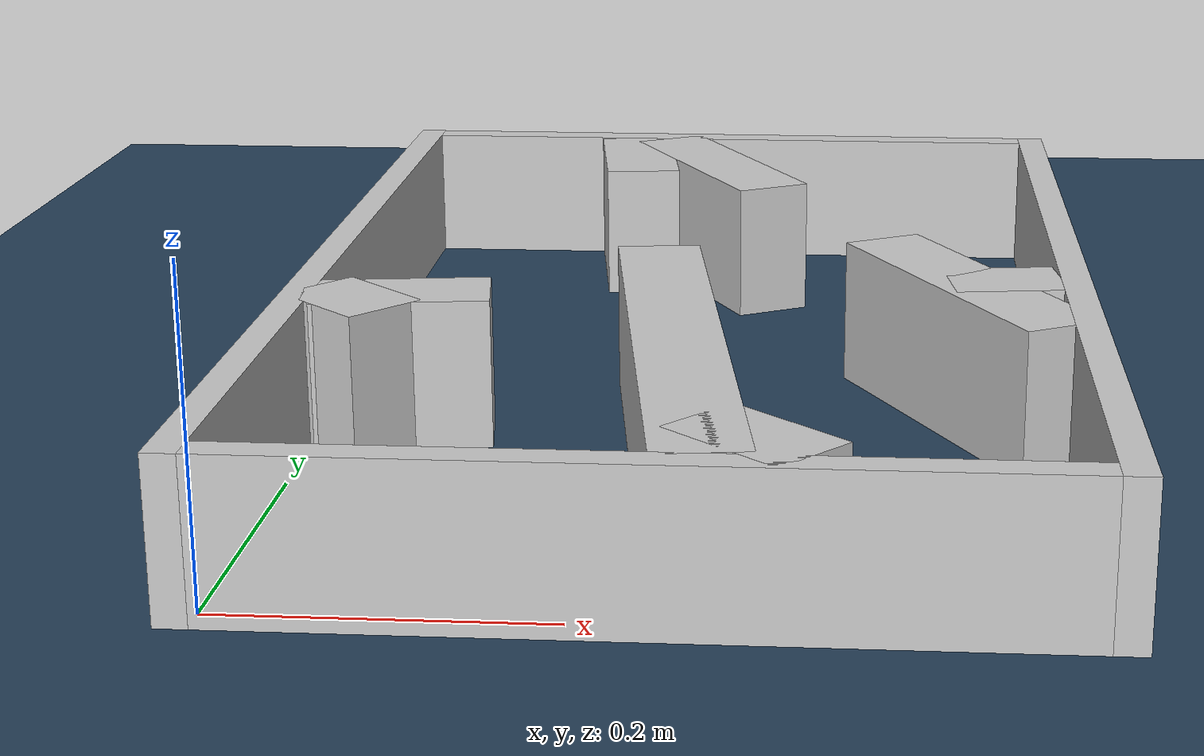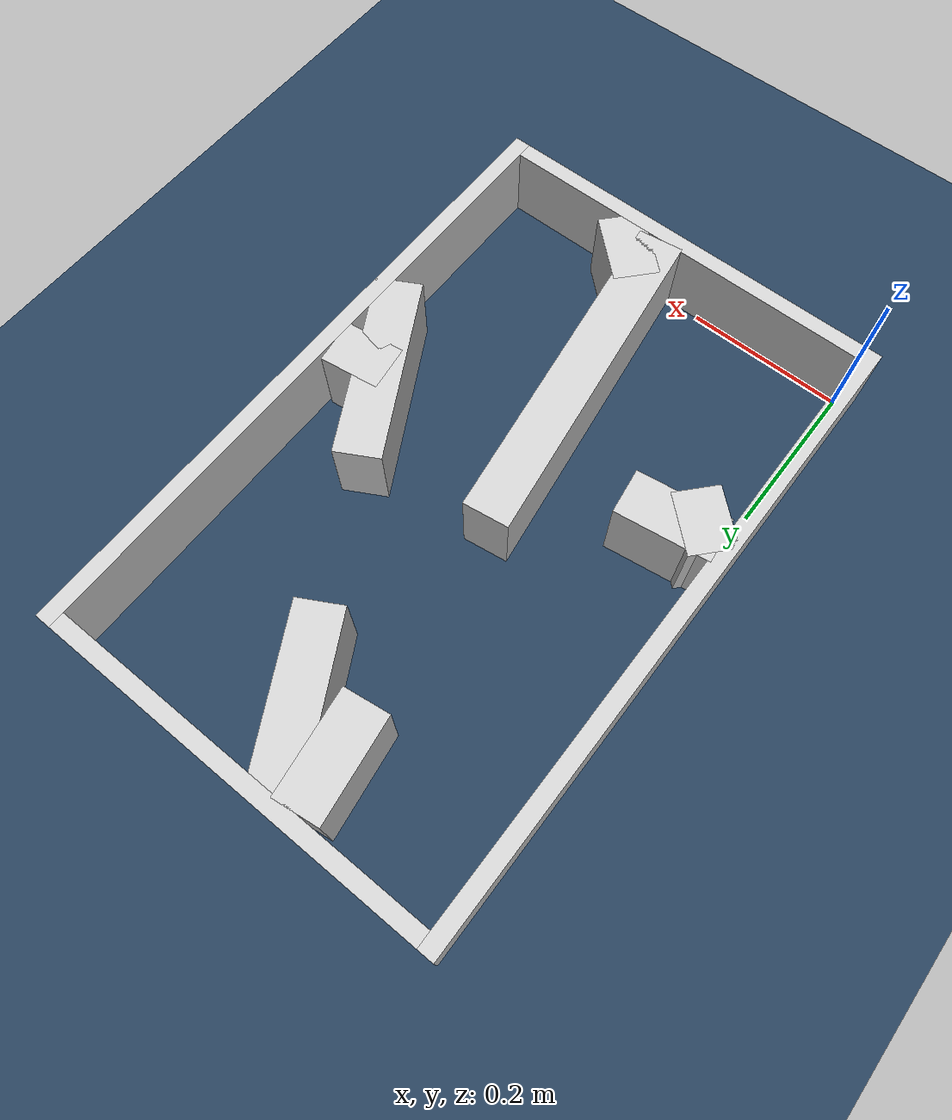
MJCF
<?xml version="1.0" ?>
<mujoco model="generated_real_template">
  <compiler angle="degree"/>
  <option timestep="0.002" integrator="implicitfast" iterations="100" cone="elliptic"/>
  <default>
    <geom density="1"/>
  </default>
  <asset>
    <texture builtin="gradient" height="3072" rgb1="0.3 0.5 0.7" rgb2="0 0 0" type="skybox" width="512"/>
    <texture builtin="checker" height="300" mark="edge" markrgb="0.8 0.8 0.8" name="groundplane" rgb1="0.2 0.3 0.4" rgb2="0.1 0.2 0.3" type="2d" width="300"/>
    <material name="groundplane" reflectance="0.2" texrepeat="5 5" texture="groundplane" texuniform="true"/>
  </asset>
  <worldbody>
    <light dir="0 0 -1" directional="true" pos="0 0 1.5"/>
    <geom name="floor" type="plane" condim="4" friction="0.5 0.005 0.001" material="groundplane" size="0 0 0.05"/>
    <body name="walls">
      <geom name="wall_boundary_left" type="box" condim="4" friction="1.0 0.005 0.0001" rgba="0.8 0.8 0.8 1" pos="-0.010000 0.387500 0.050000" euler="0 0 0.000000" size="0.010000 0.407500 0.050000"/>
      <geom name="wall_boundary_right" type="box" condim="4" friction="1.0 0.005 0.0001" rgba="0.8 0.8 0.8 1" pos="0.500000 0.387500 0.050000" euler="0 0 0.000000" size="0.010000 0.407500 0.050000"/>
      <geom name="wall_boundary_bottom" type="box" condim="4" friction="1.0 0.005 0.0001" rgba="0.8 0.8 0.8 1" pos="0.245000 -0.010000 0.050000" euler="0 0 0.000000" size="0.245000 0.010000 0.050000"/>
      <geom name="wall_boundary_top" type="box" condim="4" friction="1.0 0.005 0.0001" rgba="0.8 0.8 0.8 1" pos="0.245000 0.785000 0.050000" euler="0 0 0.000000" size="0.245000 0.010000 0.050000"/>
      <geom name="wall_inner_1_1" type="box" condim="4" friction="1.0 0.005 0.0001" rgba="0.8 0.8 0.8 1" pos="0.243218 0.688414 0.050000" euler="0 0 -61.498597" size="0.098527 0.028500 0.050000"/>
      <geom name="wall_inner_1_2" type="box" condim="4" friction="1.0 0.005 0.0001" rgba="0.8 0.8 0.8 1" pos="0.428585 0.347030 0.050000" euler="0 0 -61.498597" size="0.118128 0.028500 0.050000"/>
      <geom name="wall_inner_2_1" type="box" condim="4" friction="1.0 0.005 0.0001" rgba="0.8 0.8 0.8 1" pos="0.175803 0.712679 0.050000" euler="0 0 -82.163835" size="0.062908 0.028500 0.050000"/>
      <geom name="wall_inner_2_2" type="box" condim="4" friction="1.0 0.005 0.0001" rgba="0.8 0.8 0.8 1" pos="0.244995 0.209928 0.050000" euler="0 0 -82.163835" size="0.211907 0.028500 0.050000"/>
      <geom name="wall_inner_3_1" type="box" condim="4" friction="1.0 0.005 0.0001" rgba="0.8 0.8 0.8 1" pos="0.027966 0.278575 0.050000" euler="0 0 -42.239380" size="0.037774 0.028500 0.050000"/>
      <geom name="wall_inner_3_2" type="box" condim="4" friction="1.0 0.005 0.0001" rgba="0.8 0.8 0.8 1" pos="0.300418 0.031189 0.050000" euler="0 0 -42.239380" size="0.044758 0.028500 0.050000"/>
      <geom name="wall_inner_4_1" type="box" condim="4" friction="1.0 0.005 0.0001" rgba="0.8 0.8 0.8 1" pos="0.057679 0.295075 0.050000" euler="0 0 7.748483" size="0.058211 0.028500 0.050000"/>
      <geom name="wall_inner_4_2" type="box" condim="4" friction="1.0 0.005 0.0001" rgba="0.8 0.8 0.8 1" pos="0.452817 0.348840 0.050000" euler="0 0 7.748483" size="0.037526 0.028500 0.050000"/>
    </body>
  </worldbody>
</mujoco>
